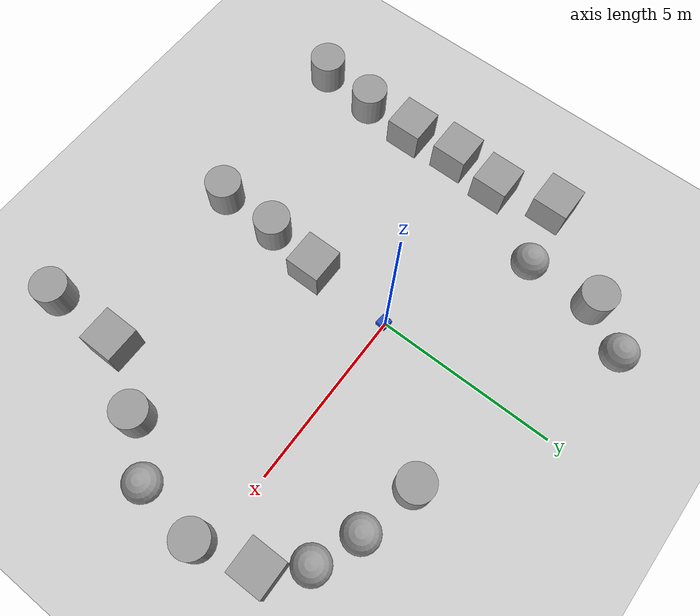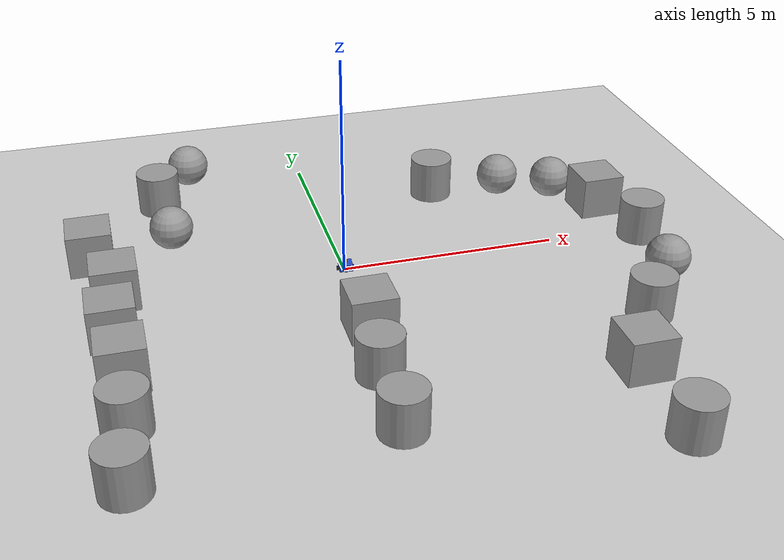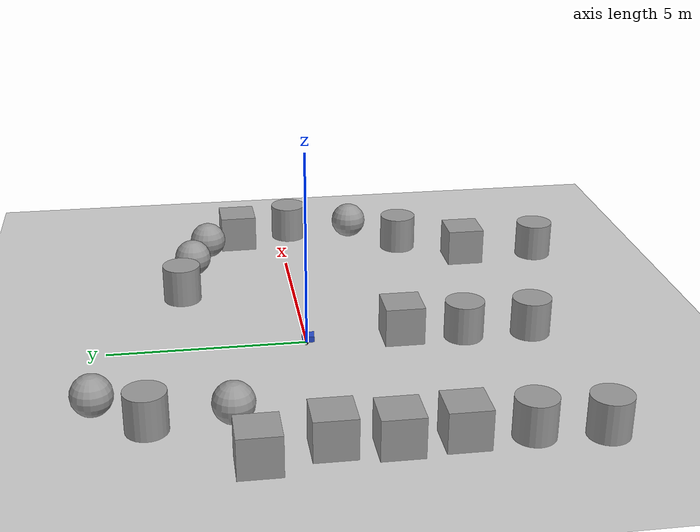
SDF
<sdf version="1.7">
 <world name="default">
  <light name="sun" type="directional">
   <pose>0 0 10 0 -0 0</pose>
   <diffuse>0.8 0.8 0.8 1</diffuse>
   <specular>0.2 0.2 0.2 1</specular>
   <attenuation>
    <range>1000</range>
    <constant>0.9</constant>
    <linear>0.01</linear>
    <quadratic>0.001</quadratic>
   </attenuation>
   <direction>-0.5 0.1 -0.9</direction>
   <spot><inner_angle>0</inner_angle><outer_angle>0</outer_angle><falloff>0</falloff></spot>
  </light>
  <model name="ground_plane">
   <static>1</static>
   <link name="link">
    <collision name="collision">
     <geometry><plane><normal>0 0 1</normal><size>100 100</size></plane></geometry>
     <surface>
      <contact><collide_bitmask>65535</collide_bitmask></contact>
      <friction><ode><mu>100</mu><mu2>50</mu2></ode></friction>
     </surface>
    </collision>
    <visual name="visual">
     <cast_shadows>0</cast_shadows>
     <geometry><plane><normal>0 0 1</normal><size>100 100</size></plane></geometry>
     <material>
      <script><uri>file://media/materials/scripts/gazebo.material</uri><name>Gazebo/Grey</name></script>
     </material>
    </visual>
   </link>
  </model>
  <gravity>0 0 -9.8</gravity>
  <magnetic_field>6e-06 2.3e-05 -4.2e-05</magnetic_field>
  <atmosphere type="adiabatic"/>
  <physics type="ode">
   <max_step_size>0.001</max_step_size>
   <real_time_factor>1</real_time_factor>
   <real_time_update_rate>1000</real_time_update_rate>
  </physics>
  <scene><ambient>0.4 0.4 0.4 1</ambient><background>0.7 0.7 0.7 1</background><shadows>1</shadows></scene>
  <spherical_coordinates>
   <surface_model>EARTH_WGS84</surface_model>
   <latitude_deg>0</latitude_deg>
   <longitude_deg>0</longitude_deg>
   <elevation>0</elevation>
   <heading_deg>0</heading_deg>
  </spherical_coordinates>
  <model name="bot_name">
   <link name="base_link">
    <inertial>
     <pose>0.055714 0 0.078571 0 -0 0</pose>
     <mass>0.7</mass>
     <inertia>
      <ixx>0.0064169</ixx>
      <ixy>0</ixy>
      <ixz>0.00118929</ixz>
      <iyy>0.00745405</iyy>
      <iyz>0</iyz>
      <izz>0.00876214</izz>
     </inertia>
    </inertial>
    <collision name="base_link_fixed_joint_lump__chassis_link_collision">
     <pose>0.05 0 0.075 0 -0 0</pose>
     <geometry><box><size>0.3 0.3 0.15</size></box></geometry>
    </collision>
    <collision name="base_link_fixed_joint_lump__caster_wheel_link_collision_1">
     <pose>0.14 0 0 0 -0 0</pose>
     <geometry><sphere><radius>0.05</radius></sphere></geometry>
     <surface><friction><ode><mu>0.001</mu><mu2>0.001</mu2></ode></friction></surface>
    </collision>
    <collision name="base_link_fixed_joint_lump__laser_collision_2">
     <pose>0 0 0.175 0 -0 0</pose>
     <geometry><cylinder><length>0.04</length><radius>0.05</radius></cylinder></geometry>
    </collision>
    <visual name="base_link_fixed_joint_lump__chassis_link_visual">
     <pose>0.05 0 0.075 0 -0 0</pose>
     <geometry><box><size>0.3 0.3 0.15</size></box></geometry>
     <material>
      <script><name>Gazebo/Blue</name><uri>file://media/materials/scripts/gazebo.material</uri></script>
     </material>
    </visual>
    <visual name="base_link_fixed_joint_lump__caster_wheel_link_visual_1">
     <pose>0.14 0 0 0 -0 0</pose>
     <geometry><sphere><radius>0.05</radius></sphere></geometry>
     <material>
      <script><name>Gazebo/White</name><uri>file://media/materials/scripts/gazebo.material</uri></script>
     </material>
    </visual>
    <visual name="base_link_fixed_joint_lump__laser_visual_2">
     <pose>0 0 0.175 0 -0 0</pose>
     <geometry><cylinder><length>0.04</length><radius>0.05</radius></cylinder></geometry>
     <material>
      <script><name>Gazebo/Orange</name><uri>file://media/materials/scripts/gazebo.material</uri></script>
     </material>
    </visual>
    <sensor name="laser" type="ray">
     <visualize>1</visualize>
     <update_rate>10</update_rate>
     <ray>
      <scan>
       <horizontal>
        <samples>360</samples>
        <min_angle>-3.14</min_angle>
        <max_angle>3.14</max_angle>
        <resolution>1</resolution>
       </horizontal>
       <vertical><samples>1</samples><min_angle>0</min_angle><max_angle>0</max_angle></vertical>
      </scan>
      <range><min>0.3</min><max>12</max></range>
     </ray>
     <plugin name="laser_controller" filename="libgazebo_ros_ray_sensor.so">
      <ros><argument>--ros-args --remap ~/out:=scan_gazebo</argument></ros>
      <output_type>sensor_msgs/LaserScan</output_type>
      <frame_name>laser</frame_name>
     </plugin>
     <pose>0 0 0.175 0 -0 0</pose>
    </sensor>
   </link>
   <joint name="left_wheel_joint" type="revolute">
    <pose relative_to="base_link">0 0.175 0 -1.5708 0 0</pose>
    <parent>base_link</parent>
    <child>left_wheel_link</child>
    <axis>
     <xyz>0 0 1</xyz>
     <limit><lower>-1e+16</lower><upper>1e+16</upper></limit>
     <dynamics><spring_reference>0</spring_reference><spring_stiffness>0</spring_stiffness></dynamics>
    </axis>
   </joint>
   <link name="left_wheel_link">
    <pose relative_to="left_wheel_joint">0 0 0 0 -0 0</pose>
    <inertial>
     <mass>0.1</mass>
     <inertia>
      <ixx>7.58333e-05</ixx>
      <ixy>0</ixy>
      <ixz>0</ixz>
      <iyy>7.58333e-05</iyy>
      <iyz>0</iyz>
      <izz>0.000125</izz>
     </inertia>
    </inertial>
    <collision name="left_wheel_link_collision">
     <geometry><cylinder><length>0.04</length><radius>0.05</radius></cylinder></geometry>
    </collision>
    <visual name="left_wheel_link_visual">
     <geometry><cylinder><length>0.04</length><radius>0.05</radius></cylinder></geometry>
     <material>
      <script><name>Gazebo/Black</name><uri>file://media/materials/scripts/gazebo.material</uri></script>
     </material>
    </visual>
   </link>
   <joint name="right_wheel_joint" type="revolute">
    <pose relative_to="base_link">0 -0.175 0 1.5708 -0 0</pose>
    <parent>base_link</parent>
    <child>right_wheel_link</child>
    <axis>
     <xyz>0 0 -1</xyz>
     <limit><lower>-1e+16</lower><upper>1e+16</upper></limit>
     <dynamics><spring_reference>0</spring_reference><spring_stiffness>0</spring_stiffness></dynamics>
    </axis>
   </joint>
   <link name="right_wheel_link">
    <pose relative_to="right_wheel_joint">0 0 0 0 -0 0</pose>
    <inertial>
     <mass>0.1</mass>
     <inertia>
      <ixx>7.58333e-05</ixx>
      <ixy>0</ixy>
      <ixz>0</ixz>
      <iyy>7.58333e-05</iyy>
      <iyz>0</iyz>
      <izz>0.000125</izz>
     </inertia>
    </inertial>
    <collision name="right_wheel_link_collision">
     <geometry><cylinder><length>0.04</length><radius>0.05</radius></cylinder></geometry>
    </collision>
    <visual name="right_wheel_link_visual">
     <geometry><cylinder><length>0.04</length><radius>0.05</radius></cylinder></geometry>
     <material>
      <script><name>Gazebo/Black</name><uri>file://media/materials/scripts/gazebo.material</uri></script>
     </material>
    </visual>
   </link>
   <static>0</static>
   <plugin name="driff_drive" filename="libgazebo_ros_diff_drive.so">
    <left_joint>left_wheel_joint</left_joint>
    <right_joint>right_wheel_joint</right_joint>
    <wheel_separation>0.35</wheel_separation>
    <wheel_diameter>0.1</wheel_diameter>
    <max_wheel_torque>200</max_wheel_torque>
    <max_wheel_acceleration>10.0</max_wheel_acceleration>
    <odometry_frame>odom</odometry_frame>
    <robot_base_frame>base_link</robot_base_frame>
    <publish_odom>1</publish_odom>
    <publish_odom_tf>1</publish_odom_tf>
    <publish_wheel_tf>1</publish_wheel_tf>
   </plugin>
   <pose>0.036241 0.008393 0.050001 3e-06 5e-06 -1.65669</pose>
  </model>
  <model name="unit_box">
   <pose>-0.042154 -2.42867 0.499995 0 1e-05 0</pose>
   <link name="link">
    <inertial>
     <mass>1</mass>
     <inertia>
      <ixx>0.166667</ixx>
      <ixy>0</ixy>
      <ixz>0</ixz>
      <iyy>0.166667</iyy>
      <iyz>0</iyz>
      <izz>0.166667</izz>
     </inertia>
    </inertial>
    <collision name="collision"><geometry><box><size>1 1 1</size></box></geometry></collision>
    <visual name="visual">
     <geometry><box><size>1 1 1</size></box></geometry>
     <material>
      <script><name>Gazebo/Grey</name><uri>file://media/materials/scripts/gazebo.material</uri></script>
     </material>
    </visual>
   </link>
  </model>
  <model name="unit_sphere">
   <pose>-2.84135 5.20789 0.5 0 -0 0</pose>
   <link name="link">
    <inertial>
     <mass>1</mass>
     <inertia><ixx>0.1</ixx><ixy>0</ixy><ixz>0</ixz><iyy>0.1</iyy><iyz>0</iyz><izz>0.1</izz></inertia>
    </inertial>
    <collision name="collision"><geometry><sphere><radius>0.5</radius></sphere></geometry></collision>
    <visual name="visual">
     <geometry><sphere><radius>0.5</radius></sphere></geometry>
     <material>
      <script><name>Gazebo/Grey</name><uri>file://media/materials/scripts/gazebo.material</uri></script>
     </material>
    </visual>
   </link>
  </model>
  <model name="unit_cylinder">
   <pose>3.00785 3.01904 0.499998 3e-06 -2e-06 0</pose>
   <link name="link">
    <inertial>
     <mass>1</mass>
     <inertia><ixx>0.145833</ixx><ixy>0</ixy><ixz>0</ixz><iyy>0.145833</iyy><iyz>0</iyz><izz>0.125</izz></inertia>
    </inertial>
    <collision name="collision">
     <geometry><cylinder><radius>0.5</radius><length>1</length></cylinder></geometry>
    </collision>
    <visual name="visual">
     <geometry><cylinder><radius>0.5</radius><length>1</length></cylinder></geometry>
     <material>
      <script><name>Gazebo/Grey</name><uri>file://media/materials/scripts/gazebo.material</uri></script>
     </material>
    </visual>
   </link>
  </model>
  <model name="unit_sphere_0">
   <pose>-3.60363 2.06875 0.5 0 -0 0</pose>
   <link name="link">
    <inertial>
     <mass>1</mass>
     <inertia><ixx>0.1</ixx><ixy>0</ixy><ixz>0</ixz><iyy>0.1</iyy><iyz>0</iyz><izz>0.1</izz></inertia>
    </inertial>
    <collision name="collision"><geometry><sphere><radius>0.5</radius></sphere></geometry></collision>
    <visual name="visual">
     <geometry><sphere><radius>0.5</radius></sphere></geometry>
     <material>
      <script><name>Gazebo/Grey</name><uri>file://media/materials/scripts/gazebo.material</uri></script>
     </material>
    </visual>
   </link>
  </model>
  <model name="unit_box_0">
   <pose>6.67709 1.26141 0.499995 -1e-05 0 0.016068</pose>
   <link name="link">
    <inertial>
     <mass>1</mass>
     <inertia>
      <ixx>0.166667</ixx>
      <ixy>0</ixy>
      <ixz>0</ixz>
      <iyy>0.166667</iyy>
      <iyz>0</iyz>
      <izz>0.166667</izz>
     </inertia>
    </inertial>
    <collision name="collision"><geometry><box><size>1 1 1</size></box></geometry></collision>
    <visual name="visual">
     <geometry><box><size>1 1 1</size></box></geometry>
     <material>
      <script><name>Gazebo/Grey</name><uri>file://media/materials/scripts/gazebo.material</uri></script>
     </material>
    </visual>
   </link>
  </model>
  <model name="unit_box_1">
   <pose>-5.09424 -2.82903 0.499995 -1e-05 -0 -0</pose>
   <link name="link">
    <inertial>
     <mass>1</mass>
     <inertia>
      <ixx>0.166667</ixx>
      <ixy>0</ixy>
      <ixz>0</ixz>
      <iyy>0.166667</iyy>
      <iyz>0</iyz>
      <izz>0.166667</izz>
     </inertia>
    </inertial>
    <collision name="collision"><geometry><box><size>1 1 1</size></box></geometry></collision>
    <visual name="visual">
     <geometry><box><size>1 1 1</size></box></geometry>
     <material>
      <script><name>Gazebo/Grey</name><uri>file://media/materials/scripts/gazebo.material</uri></script>
     </material>
    </visual>
   </link>
  </model>
  <model name="unit_box_2">
   <pose>4.74425 -5.15556 0.499995 0 1e-05 0</pose>
   <link name="link">
    <inertial>
     <mass>1</mass>
     <inertia>
      <ixx>0.166667</ixx>
      <ixy>0</ixy>
      <ixz>0</ixz>
      <iyy>0.166667</iyy>
      <iyz>0</iyz>
      <izz>0.166667</izz>
     </inertia>
    </inertial>
    <collision name="collision"><geometry><box><size>1 1 1</size></box></geometry></collision>
    <visual name="visual">
     <geometry><box><size>1 1 1</size></box></geometry>
     <material>
      <script><name>Gazebo/Grey</name><uri>file://media/materials/scripts/gazebo.material</uri></script>
     </material>
    </visual>
   </link>
  </model>
  <model name="unit_sphere_1">
   <pose>6.89987 -2.13033 0.5 0 -0 0</pose>
   <link name="link">
    <inertial>
     <mass>1</mass>
     <inertia><ixx>0.1</ixx><ixy>0</ixy><ixz>0</ixz><iyy>0.1</iyy><iyz>0</iyz><izz>0.1</izz></inertia>
    </inertial>
    <collision name="collision"><geometry><sphere><radius>0.5</radius></sphere></geometry></collision>
    <visual name="visual">
     <geometry><sphere><radius>0.5</radius></sphere></geometry>
     <material>
      <script><name>Gazebo/Grey</name><uri>file://media/materials/scripts/gazebo.material</uri></script>
     </material>
    </visual>
   </link>
  </model>
  <model name="unit_cylinder_0">
   <pose>-0.292004 -5.73034 0.499992 -3e-06 3e-06 0</pose>
   <link name="link">
    <inertial>
     <mass>1</mass>
     <inertia><ixx>0.145833</ixx><ixy>0</ixy><ixz>0</ixz><iyy>0.145833</iyy><iyz>0</iyz><izz>0.125</izz></inertia>
    </inertial>
    <collision name="collision">
     <geometry><cylinder><radius>0.5</radius><length>1</length></cylinder></geometry>
    </collision>
    <visual name="visual">
     <geometry><cylinder><radius>0.5</radius><length>1</length></cylinder></geometry>
     <material>
      <script><name>Gazebo/Grey</name><uri>file://media/materials/scripts/gazebo.material</uri></script>
     </material>
    </visual>
   </link>
  </model>
  <model name="unit_cylinder_1">
   <pose>4.71667 -7.29679 0.499998 3e-06 -3e-06 0</pose>
   <link name="link">
    <inertial>
     <mass>1</mass>
     <inertia><ixx>0.145833</ixx><ixy>0</ixy><ixz>0</ixz><iyy>0.145833</iyy><iyz>0</iyz><izz>0.125</izz></inertia>
    </inertial>
    <collision name="collision">
     <geometry><cylinder><radius>0.5</radius><length>1</length></cylinder></geometry>
    </collision>
    <visual name="visual">
     <geometry><cylinder><radius>0.5</radius><length>1</length></cylinder></geometry>
     <material>
      <script><name>Gazebo/Grey</name><uri>file://media/materials/scripts/gazebo.material</uri></script>
     </material>
    </visual>
   </link>
  </model>
  <model name="unit_box_3">
   <pose>-5.03695 0.053996 0.499995 0 1e-05 0</pose>
   <link name="link">
    <inertial>
     <mass>1</mass>
     <inertia>
      <ixx>0.166667</ixx>
      <ixy>0</ixy>
      <ixz>0</ixz>
      <iyy>0.166667</iyy>
      <iyz>0</iyz>
      <izz>0.166667</izz>
     </inertia>
    </inertial>
    <collision name="collision"><geometry><box><size>1 1 1</size></box></geometry></collision>
    <visual name="visual">
     <geometry><box><size>1 1 1</size></box></geometry>
     <material>
      <script><name>Gazebo/Grey</name><uri>file://media/materials/scripts/gazebo.material</uri></script>
     </material>
    </visual>
   </link>
  </model>
  <model name="unit_cylinder_2">
   <pose>-0.247626 -3.99479 0.499998 3e-06 -3e-06 0</pose>
   <link name="link">
    <inertial>
     <mass>1</mass>
     <inertia><ixx>0.145833</ixx><ixy>0</ixy><ixz>0</ixz><iyy>0.145833</iyy><iyz>0</iyz><izz>0.125</izz></inertia>
    </inertial>
    <collision name="collision">
     <geometry><cylinder><radius>0.5</radius><length>1</length></cylinder></geometry>
    </collision>
    <visual name="visual">
     <geometry><cylinder><radius>0.5</radius><length>1</length></cylinder></geometry>
     <material>
      <script><name>Gazebo/Grey</name><uri>file://media/materials/scripts/gazebo.material</uri></script>
     </material>
    </visual>
   </link>
  </model>
  <model name="unit_cylinder_3">
   <pose>5.82124 -3.44571 0.499992 -3e-06 3e-06 0</pose>
   <link name="link">
    <inertial>
     <mass>1</mass>
     <inertia><ixx>0.145833</ixx><ixy>0</ixy><ixz>0</ixz><iyy>0.145833</iyy><iyz>0</iyz><izz>0.125</izz></inertia>
    </inertial>
    <collision name="collision">
     <geometry><cylinder><radius>0.5</radius><length>1</length></cylinder></geometry>
    </collision>
    <visual name="visual">
     <geometry><cylinder><radius>0.5</radius><length>1</length></cylinder></geometry>
     <material>
      <script><name>Gazebo/Grey</name><uri>file://media/materials/scripts/gazebo.material</uri></script>
     </material>
    </visual>
   </link>
  </model>
  <model name="unit_cylinder_4">
   <pose>7.137 -0.317676 0.499998 3e-06 -4e-06 0</pose>
   <link name="link">
    <inertial>
     <mass>1</mass>
     <inertia><ixx>0.145833</ixx><ixy>0</ixy><ixz>0</ixz><iyy>0.145833</iyy><iyz>0</iyz><izz>0.125</izz></inertia>
    </inertial>
    <collision name="collision">
     <geometry><cylinder><radius>0.5</radius><length>1</length></cylinder></geometry>
    </collision>
    <visual name="visual">
     <geometry><cylinder><radius>0.5</radius><length>1</length></cylinder></geometry>
     <material>
      <script><name>Gazebo/Grey</name><uri>file://media/materials/scripts/gazebo.material</uri></script>
     </material>
    </visual>
   </link>
  </model>
  <model name="unit_sphere_2">
   <pose>4.65385 2.66308 0.5 0 -0 0</pose>
   <link name="link">
    <inertial>
     <mass>1</mass>
     <inertia><ixx>0.1</ixx><ixy>0</ixy><ixz>0</ixz><iyy>0.1</iyy><iyz>0</iyz><izz>0.1</izz></inertia>
    </inertial>
    <collision name="collision"><geometry><sphere><radius>0.5</radius></sphere></geometry></collision>
    <visual name="visual">
     <geometry><sphere><radius>0.5</radius></sphere></geometry>
     <material>
      <script><name>Gazebo/Grey</name><uri>file://media/materials/scripts/gazebo.material</uri></script>
     </material>
    </visual>
   </link>
  </model>
  <model name="unit_sphere_3">
   <pose>5.88932 2.17831 0.5 -0.013482 -0.011368 -0.017333</pose>
   <link name="link">
    <inertial>
     <mass>1</mass>
     <inertia><ixx>0.1</ixx><ixy>0</ixy><ixz>0</ixz><iyy>0.1</iyy><iyz>0</iyz><izz>0.1</izz></inertia>
    </inertial>
    <collision name="collision"><geometry><sphere><radius>0.5</radius></sphere></geometry></collision>
    <visual name="visual">
     <geometry><sphere><radius>0.5</radius></sphere></geometry>
     <material>
      <script><name>Gazebo/Grey</name><uri>file://media/materials/scripts/gazebo.material</uri></script>
     </material>
    </visual>
   </link>
  </model>
  <model name="unit_cylinder_5">
   <pose>-3.70187 4.00371 0.499992 -3e-06 -4e-06 -0</pose>
   <link name="link">
    <inertial>
     <mass>1</mass>
     <inertia><ixx>0.145833</ixx><ixy>0</ixy><ixz>0</ixz><iyy>0.145833</iyy><iyz>0</iyz><izz>0.125</izz></inertia>
    </inertial>
    <collision name="collision">
     <geometry><cylinder><radius>0.5</radius><length>1</length></cylinder></geometry>
    </collision>
    <visual name="visual">
     <geometry><cylinder><radius>0.5</radius><length>1</length></cylinder></geometry>
     <material>
      <script><name>Gazebo/Grey</name><uri>file://media/materials/scripts/gazebo.material</uri></script>
     </material>
    </visual>
   </link>
  </model>
  <model name="unit_box_4">
   <pose>-5.4711 1.69277 0.499995 -1e-05 -0 -0</pose>
   <link name="link">
    <inertial>
     <mass>1</mass>
     <inertia>
      <ixx>0.166667</ixx>
      <ixy>0</ixy>
      <ixz>0</ixz>
      <iyy>0.166667</iyy>
      <iyz>0</iyz>
      <izz>0.166667</izz>
     </inertia>
    </inertial>
    <collision name="collision"><geometry><box><size>1 1 1</size></box></geometry></collision>
    <visual name="visual">
     <geometry><box><size>1 1 1</size></box></geometry>
     <material>
      <script><name>Gazebo/Grey</name><uri>file://media/materials/scripts/gazebo.material</uri></script>
     </material>
    </visual>
   </link>
  </model>
  <model name="unit_box_5">
   <pose>-5.18776 -1.36347 0.499995 0 1e-05 0</pose>
   <link name="link">
    <inertial>
     <mass>1</mass>
     <inertia>
      <ixx>0.166667</ixx>
      <ixy>0</ixy>
      <ixz>0</ixz>
      <iyy>0.166667</iyy>
      <iyz>0</iyz>
      <izz>0.166667</izz>
     </inertia>
    </inertial>
    <collision name="collision"><geometry><box><size>1 1 1</size></box></geometry></collision>
    <visual name="visual">
     <geometry><box><size>1 1 1</size></box></geometry>
     <material>
      <script><name>Gazebo/Grey</name><uri>file://media/materials/scripts/gazebo.material</uri></script>
     </material>
    </visual>
   </link>
  </model>
  <model name="unit_cylinder_6">
   <pose>-5.13678 -4.38459 0.499993 -3e-06 -4e-06 -0</pose>
   <link name="link">
    <inertial>
     <mass>1</mass>
     <inertia><ixx>0.145833</ixx><ixy>0</ixy><ixz>0</ixz><iyy>0.145833</iyy><iyz>0</iyz><izz>0.125</izz></inertia>
    </inertial>
    <collision name="collision">
     <geometry><cylinder><radius>0.5</radius><length>1</length></cylinder></geometry>
    </collision>
    <visual name="visual">
     <geometry><cylinder><radius>0.5</radius><length>1</length></cylinder></geometry>
     <material>
      <script><name>Gazebo/Grey</name><uri>file://media/materials/scripts/gazebo.material</uri></script>
     </material>
    </visual>
   </link>
  </model>
  <model name="unit_cylinder_7">
   <pose>-5.29096 -6.01743 0.499997 3e-06 4e-06 -0</pose>
   <link name="link">
    <inertial>
     <mass>1</mass>
     <inertia><ixx>0.145833</ixx><ixy>0</ixy><ixz>0</ixz><iyy>0.145833</iyy><iyz>0</iyz><izz>0.125</izz></inertia>
    </inertial>
    <collision name="collision">
     <geometry><cylinder><radius>0.5</radius><length>1</length></cylinder></geometry>
    </collision>
    <visual name="visual">
     <geometry><cylinder><radius>0.5</radius><length>1</length></cylinder></geometry>
     <material>
      <script><name>Gazebo/Grey</name><uri>file://media/materials/scripts/gazebo.material</uri></script>
     </material>
    </visual>
   </link>
  </model>
 </world>
</sdf>
